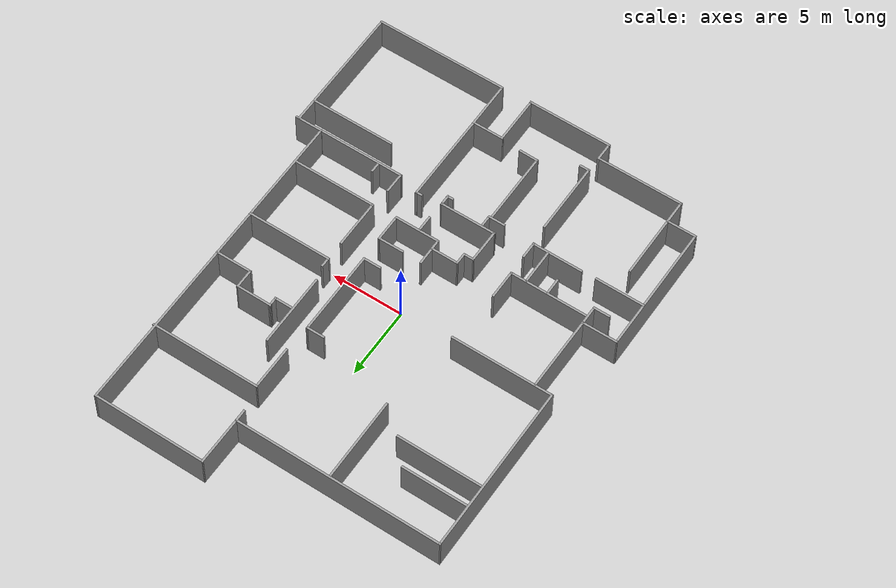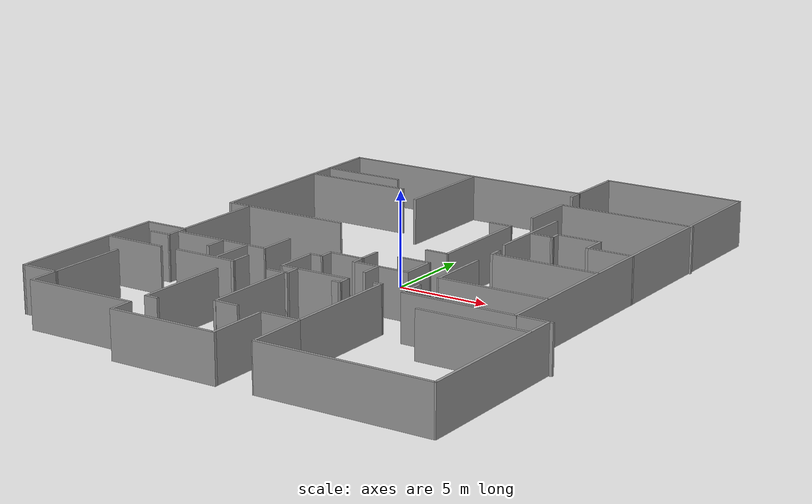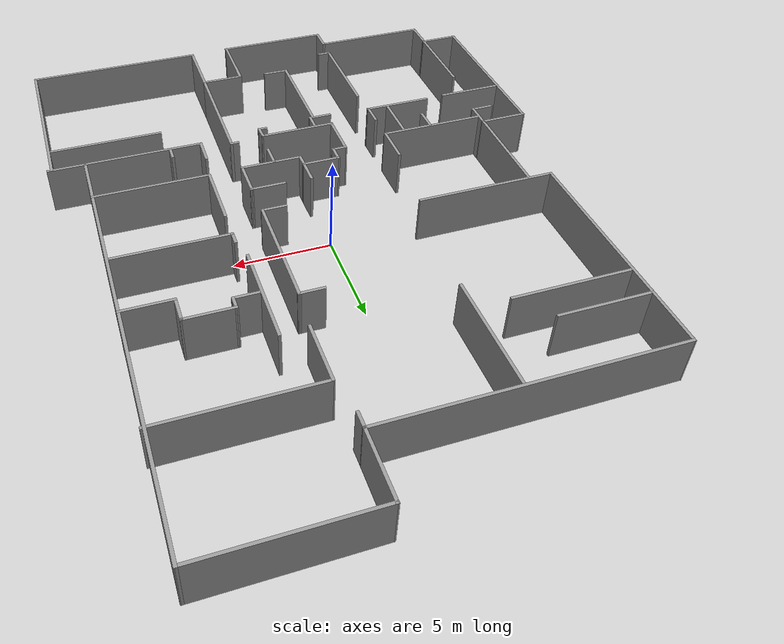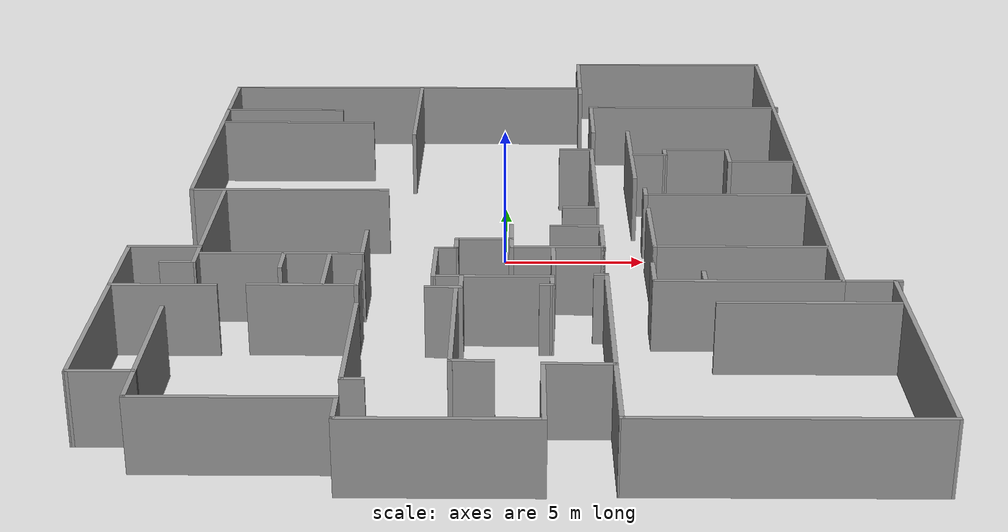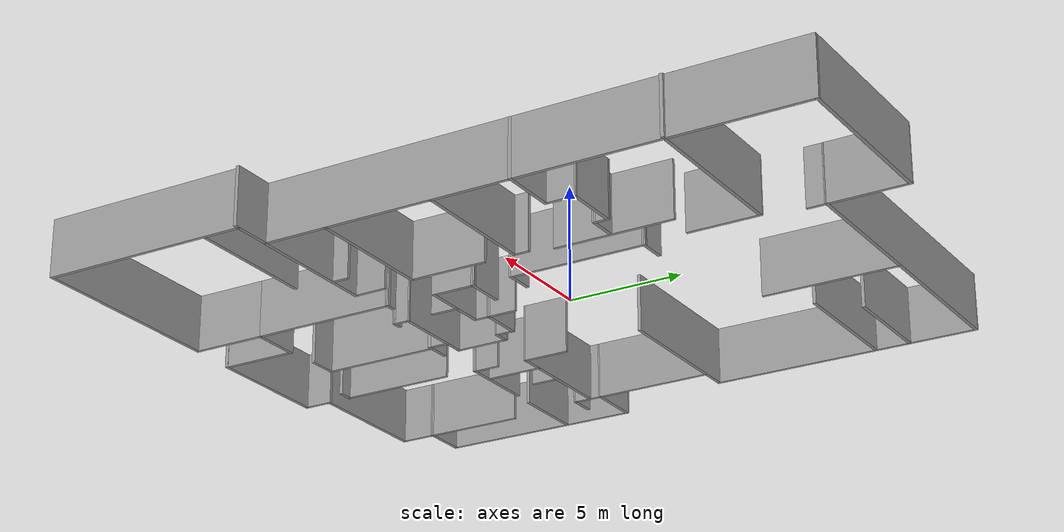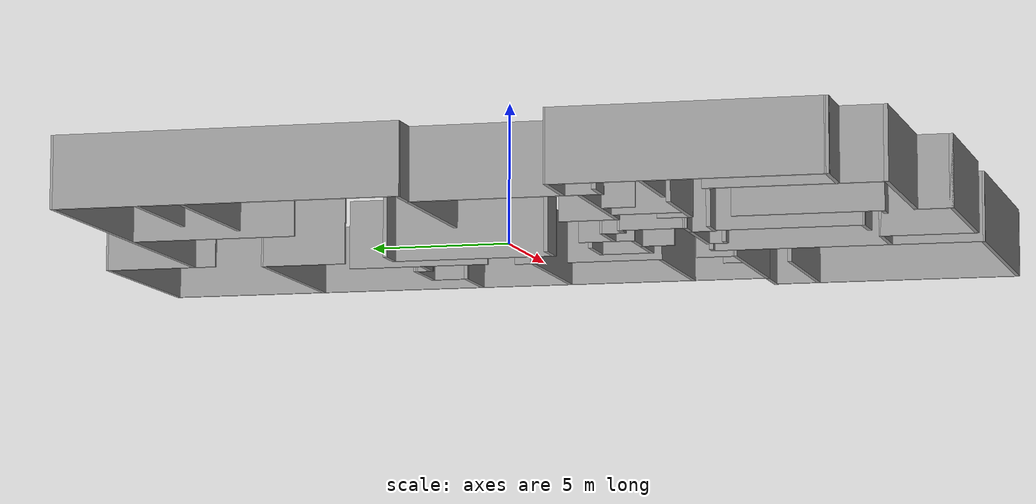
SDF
<?xml version='1.0'?>
<sdf version='1.7'>
  <model name='apartment'>
    <pose>0.0743 -0.139559 0 0 -0 0</pose>
    <link name='Wall_116'>
      <collision name='Wall_116_Collision'>
        <geometry>
          <box>
            <size>23.3088 0.15 2.5</size>
          </box>
        </geometry>
        <pose>0 0 1.25 0 -0 0</pose>
      </collision>
      <visual name='Wall_116_Visual'>
        <pose>0 0 1.25 0 -0 0</pose>
        <geometry>
          <box>
            <size>23.3088 0.15 2.5</size>
          </box>
        </geometry>
        <material>
          <script>
            <uri>file://media/materials/scripts/gazebo.material</uri>
            <name>Gazebo/Grey</name>
          </script>
          <ambient>1 1 1 1</ambient>
        </material>
        <meta>
          <layer>0</layer>
        </meta>
      </visual>
      <pose>10.8315 4.62381 0 0 -0 -1.57136</pose>
    </link>
    <link name='Wall_119'>
      <collision name='Wall_119_Collision'>
        <geometry>
          <box>
            <size>8 0.15 2.5</size>
          </box>
        </geometry>
        <pose>0 0 1.25 0 -0 0</pose>
      </collision>
      <visual name='Wall_119_Visual'>
        <pose>0 0 1.25 0 -0 0</pose>
        <geometry>
          <box>
            <size>8 0.15 2.5</size>
          </box>
        </geometry>
        <material>
          <script>
            <uri>file://media/materials/scripts/gazebo.material</uri>
            <name>Gazebo/Grey</name>
          </script>
          <ambient>1 1 1 1</ambient>
        </material>
        <meta>
          <layer>0</layer>
        </meta>
      </visual>
      <pose>6.91297 16.2032 0 0 -0 3.14159</pose>
    </link>
    <link name='Wall_120'>
      <collision name='Wall_120_Collision'>
        <geometry>
          <box>
            <size>3.48703 0.15 2.5</size>
          </box>
        </geometry>
        <pose>0 0 1.25 0 -0 0</pose>
      </collision>
      <visual name='Wall_120_Visual'>
        <pose>0 0 1.25 0 -0 0</pose>
        <geometry>
          <box>
            <size>3.48703 0.15 2.5</size>
          </box>
        </geometry>
        <material>
          <script>
            <uri>file://media/materials/scripts/gazebo.material</uri>
            <name>Gazebo/Grey</name>
          </script>
          <ambient>1 1 1 1</ambient>
        </material>
        <meta>
          <layer>0</layer>
        </meta>
      </visual>
      <pose>2.975 14.5347 0 0 -0 -1.57857</pose>
    </link>
    <link name='Wall_121'>
      <collision name='Wall_121_Collision'>
        <geometry>
          <box>
            <size>14.5961 0.15 2.5</size>
          </box>
        </geometry>
        <pose>0 0 1.25 0 -0 0</pose>
      </collision>
      <visual name='Wall_121_Visual'>
        <pose>0 0 1.25 0 -0 0</pose>
        <geometry>
          <box>
            <size>14.5961 0.15 2.5</size>
          </box>
        </geometry>
        <material>
          <script>
            <uri>file://media/materials/scripts/gazebo.material</uri>
            <name>Gazebo/Grey</name>
          </script>
          <ambient>1 1 1 1</ambient>
        </material>
        <meta>
          <layer>0</layer>
        </meta>
      </visual>
      <pose>-4.26104 12.8597 0 0 -0 -3.1407</pose>
    </link>
    <link name='Wall_122'>
      <collision name='Wall_122_Collision'>
        <geometry>
          <box>
            <size>12.0512 0.15 2.5</size>
          </box>
        </geometry>
        <pose>0 0 1.25 0 -0 0</pose>
      </collision>
      <visual name='Wall_122_Visual'>
        <pose>0 0 1.25 0 -0 0</pose>
        <geometry>
          <box>
            <size>12.0512 0.15 2.5</size>
          </box>
        </geometry>
        <material>
          <script>
            <uri>file://media/materials/scripts/gazebo.material</uri>
            <name>Gazebo/Grey</name>
          </script>
          <ambient>1 1 1 1</ambient>
        </material>
        <meta>
          <layer>0</layer>
        </meta>
      </visual>
      <pose>-11.4841 6.90265 0 0 -0 -1.5708</pose>
    </link>
    <link name='Wall_124'>
      <collision name='Wall_124_Collision'>
        <geometry>
          <box>
            <size>7.25 0.15 2.5</size>
          </box>
        </geometry>
        <pose>0 0 1.25 0 -0 0</pose>
      </collision>
      <visual name='Wall_124_Visual'>
        <pose>0 0 1.25 0 -0 0</pose>
        <geometry>
          <box>
            <size>7.25 0.15 2.5</size>
          </box>
        </geometry>
        <material>
          <script>
            <uri>file://media/materials/scripts/gazebo.material</uri>
            <name>Gazebo/Grey</name>
          </script>
          <ambient>1 1 1 1</ambient>
        </material>
        <meta>
          <layer>0</layer>
        </meta>
      </visual>
      <pose>-7.93411 0.952068 0 0 -0 0</pose>
    </link>
    <link name='Wall_126'>
      <collision name='Wall_126_Collision'>
        <geometry>
          <box>
            <size>5.33239 0.15 2.5</size>
          </box>
        </geometry>
        <pose>0 0 1.25 0 -0 0</pose>
      </collision>
      <visual name='Wall_126_Visual'>
        <pose>0 0 1.25 0 -0 0</pose>
        <geometry>
          <box>
            <size>5.33239 0.15 2.5</size>
          </box>
        </geometry>
        <material>
          <script>
            <uri>file://media/materials/scripts/gazebo.material</uri>
            <name>Gazebo/Grey</name>
          </script>
          <ambient>1 1 1 1</ambient>
        </material>
        <meta>
          <layer>0</layer>
        </meta>
      </visual>
      <pose>-10.286 -1.7304 0 0 -0 -1.57687</pose>
    </link>
    <link name='Wall_128'>
      <collision name='Wall_128_Collision'>
        <geometry>
          <box>
            <size>2.53582 0.15 2.5</size>
          </box>
        </geometry>
        <pose>0 0 1.25 0 -0 0</pose>
      </collision>
      <visual name='Wall_128_Visual'>
        <pose>0 0 1.25 0 -0 0</pose>
        <geometry>
          <box>
            <size>2.53582 0.15 2.5</size>
          </box>
        </geometry>
        <material>
          <script>
            <uri>file://media/materials/scripts/gazebo.material</uri>
            <name>Gazebo/Grey</name>
          </script>
          <ambient>1 1 1 1</ambient>
        </material>
        <meta>
          <layer>0</layer>
        </meta>
      </visual>
      <pose>-11.4947 -4.32806 0 0 -0 -3.13613</pose>
    </link>
    <link name='Wall_130'>
      <collision name='Wall_130_Collision'>
        <geometry>
          <box>
            <size>9.25 0.15 2.5</size>
          </box>
        </geometry>
        <pose>0 0 1.25 0 -0 0</pose>
      </collision>
      <visual name='Wall_130_Visual'>
        <pose>0 0 1.25 0 -0 0</pose>
        <geometry>
          <box>
            <size>9.25 0.15 2.5</size>
          </box>
        </geometry>
        <material>
          <script>
            <uri>file://media/materials/scripts/gazebo.material</uri>
            <name>Gazebo/Grey</name>
          </script>
          <ambient>1 1 1 1</ambient>
        </material>
        <meta>
          <layer>0</layer>
        </meta>
      </visual>
      <pose>-12.6812 -8.88457 0 0 -0 -1.56938</pose>
    </link>
    <link name='Wall_132'>
      <collision name='Wall_132_Collision'>
        <geometry>
          <box>
            <size>2.12901 0.15 2.5</size>
          </box>
        </geometry>
        <pose>0 0 1.25 0 -0 0</pose>
      </collision>
      <visual name='Wall_132_Visual'>
        <pose>0 0 1.25 0 -0 0</pose>
        <geometry>
          <box>
            <size>2.12901 0.15 2.5</size>
          </box>
        </geometry>
        <material>
          <script>
            <uri>file://media/materials/scripts/gazebo.material</uri>
            <name>Gazebo/Grey</name>
          </script>
          <ambient>1 1 1 1</ambient>
        </material>
        <meta>
          <layer>0</layer>
        </meta>
      </visual>
      <pose>-11.6852 -13.4313 0 0 -0 0.003258</pose>
    </link>
    <link name='Wall_134'>
      <collision name='Wall_134_Collision'>
        <geometry>
          <box>
            <size>1.71777 0.15 2.5</size>
          </box>
        </geometry>
        <pose>0 0 1.25 0 -0 0</pose>
      </collision>
      <visual name='Wall_134_Visual'>
        <pose>0 0 1.25 0 -0 0</pose>
        <geometry>
          <box>
            <size>1.71777 0.15 2.5</size>
          </box>
        </geometry>
        <material>
          <script>
            <uri>file://media/materials/scripts/gazebo.material</uri>
            <name>Gazebo/Grey</name>
          </script>
          <ambient>1 1 1 1</ambient>
        </material>
        <meta>
          <layer>0</layer>
        </meta>
      </visual>
      <pose>-10.6957 -14.212 0 0 -0 -1.5708</pose>
    </link>
    <link name='Wall_136'>
      <collision name='Wall_136_Collision'>
        <geometry>
          <box>
            <size>6.15328 0.15 2.5</size>
          </box>
        </geometry>
        <pose>0 0 1.25 0 -0 0</pose>
      </collision>
      <visual name='Wall_136_Visual'>
        <pose>0 0 1.25 0 -0 0</pose>
        <geometry>
          <box>
            <size>6.15328 0.15 2.5</size>
          </box>
        </geometry>
        <material>
          <script>
            <uri>file://media/materials/scripts/gazebo.material</uri>
            <name>Gazebo/Grey</name>
          </script>
          <ambient>1 1 1 1</ambient>
        </material>
        <meta>
          <layer>0</layer>
        </meta>
      </visual>
      <pose>-7.6941 -14.9959 0 0 -0 0</pose>
    </link>
    <link name='Wall_138'>
      <collision name='Wall_138_Collision'>
        <geometry>
          <box>
            <size>1.35788 0.15 2.5</size>
          </box>
        </geometry>
        <pose>0 0 1.25 0 -0 0</pose>
      </collision>
      <visual name='Wall_138_Visual'>
        <pose>0 0 1.25 0 -0 0</pose>
        <geometry>
          <box>
            <size>1.35788 0.15 2.5</size>
          </box>
        </geometry>
        <material>
          <script>
            <uri>file://media/materials/scripts/gazebo.material</uri>
            <name>Gazebo/Grey</name>
          </script>
          <ambient>1 1 1 1</ambient>
        </material>
        <meta>
          <layer>0</layer>
        </meta>
      </visual>
      <pose>-4.69246 -15.5998 0 0 -0 -1.5708</pose>
    </link>
    <link name='Wall_140'>
      <collision name='Wall_140_Collision'>
        <geometry>
          <box>
            <size>5.98039 0.15 2.5</size>
          </box>
        </geometry>
        <pose>0 0 1.25 0 -0 0</pose>
      </collision>
      <visual name='Wall_140_Visual'>
        <pose>0 0 1.25 0 -0 0</pose>
        <geometry>
          <box>
            <size>5.98039 0.15 2.5</size>
          </box>
        </geometry>
        <material>
          <script>
            <uri>file://media/materials/scripts/gazebo.material</uri>
            <name>Gazebo/Grey</name>
          </script>
          <ambient>1 1 1 1</ambient>
        </material>
        <meta>
          <layer>0</layer>
        </meta>
      </visual>
      <pose>-1.77727 -16.2038 0 0 -0 0</pose>
    </link>
    <link name='Wall_141'>
      <collision name='Wall_141_Collision'>
        <geometry>
          <box>
            <size>3.48538 0.15 2.5</size>
          </box>
        </geometry>
        <pose>0 0 1.25 0 -0 0</pose>
      </collision>
      <visual name='Wall_141_Visual'>
        <pose>0 0 1.25 0 -0 0</pose>
        <geometry>
          <box>
            <size>3.48538 0.15 2.5</size>
          </box>
        </geometry>
        <material>
          <script>
            <uri>file://media/materials/scripts/gazebo.material</uri>
            <name>Gazebo/Grey</name>
          </script>
          <ambient>1 1 1 1</ambient>
        </material>
        <meta>
          <layer>0</layer>
        </meta>
      </visual>
      <pose>1.12812 -14.5361 0 0 -0 1.5708</pose>
    </link>
    <link name='Wall_142'>
      <collision name='Wall_142_Collision'>
        <geometry>
          <box>
            <size>2.26961 0.15 2.5</size>
          </box>
        </geometry>
        <pose>0 0 1.25 0 -0 0</pose>
      </collision>
      <visual name='Wall_142_Visual'>
        <pose>0 0 1.25 0 -0 0</pose>
        <geometry>
          <box>
            <size>2.26961 0.15 2.5</size>
          </box>
        </geometry>
        <material>
          <script>
            <uri>file://media/materials/scripts/gazebo.material</uri>
            <name>Gazebo/Grey</name>
          </script>
          <ambient>1 1 1 1</ambient>
        </material>
        <meta>
          <layer>0</layer>
        </meta>
      </visual>
      <pose>2.18792 -12.8684 0 0 -0 0</pose>
    </link>
    <link name='Wall_143'>
      <collision name='Wall_143_Collision'>
        <geometry>
          <box>
            <size>3.40693 0.15 2.5</size>
          </box>
        </geometry>
        <pose>0 0 1.25 0 -0 0</pose>
      </collision>
      <visual name='Wall_143_Visual'>
        <pose>0 0 1.25 0 -0 0</pose>
        <geometry>
          <box>
            <size>3.40693 0.15 2.5</size>
          </box>
        </geometry>
        <material>
          <script>
            <uri>file://media/materials/scripts/gazebo.material</uri>
            <name>Gazebo/Grey</name>
          </script>
          <ambient>1 1 1 1</ambient>
        </material>
        <meta>
          <layer>0</layer>
        </meta>
      </visual>
      <pose>3.25264 -14.4968 0 0 -0 -1.56778</pose>
    </link>
    <link name='Wall_144'>
      <collision name='Wall_144_Collision'>
        <geometry>
          <box>
            <size>9.39711 0.15 2.5</size>
          </box>
        </geometry>
        <pose>0 0 1.25 0 -0 0</pose>
      </collision>
      <visual name='Wall_144_Visual'>
        <pose>0 0 1.25 0 -0 0</pose>
        <geometry>
          <box>
            <size>9.39711 0.15 2.5</size>
          </box>
        </geometry>
        <material>
          <script>
            <uri>file://media/materials/scripts/gazebo.material</uri>
            <name>Gazebo/Grey</name>
          </script>
          <ambient>1 1 1 1</ambient>
        </material>
        <meta>
          <layer>0</layer>
        </meta>
      </visual>
      <pose>7.88109 -16.1204 0 0 -0 0.001061</pose>
    </link>
    <link name='Wall_145'>
      <collision name='Wall_145_Collision'>
        <geometry>
          <box>
            <size>9.27942 0.15 2.5</size>
          </box>
        </geometry>
        <pose>0 0 1.25 0 -0 0</pose>
      </collision>
      <visual name='Wall_145_Visual'>
        <pose>0 0 1.25 0 -0 0</pose>
        <geometry>
          <box>
            <size>9.27942 0.15 2.5</size>
          </box>
        </geometry>
        <material>
          <script>
            <uri>file://media/materials/scripts/gazebo.material</uri>
            <name>Gazebo/Grey</name>
          </script>
          <ambient>1 1 1 1</ambient>
        </material>
        <meta>
          <layer>0</layer>
        </meta>
      </visual>
      <pose>12.5145 -11.5508 0 0 -0 1.5708</pose>
    </link>
    <link name='Wall_147'>
      <collision name='Wall_147_Collision'>
        <geometry>
          <box>
            <size>2.01302 0.15 2.5</size>
          </box>
        </geometry>
        <pose>0 0 1.25 0 -0 0</pose>
      </collision>
      <visual name='Wall_147_Visual'>
        <pose>0 0 1.25 0 -0 0</pose>
        <geometry>
          <box>
            <size>2.01302 0.15 2.5</size>
          </box>
        </geometry>
        <material>
          <script>
            <uri>file://media/materials/scripts/gazebo.material</uri>
            <name>Gazebo/Grey</name>
          </script>
          <ambient>1 1 1 1</ambient>
        </material>
        <meta>
          <layer>0</layer>
        </meta>
      </visual>
      <pose>11.7565 -6.95561 0 0 -0 0</pose>
    </link>
    <link name='Wall_149'>
      <collision name='Wall_149_Collision'>
        <geometry>
          <box>
            <size>4.75 0.15 2.5</size>
          </box>
        </geometry>
        <pose>0 0 1.25 0 -0 0</pose>
      </collision>
      <visual name='Wall_149_Visual'>
        <pose>0 0 1.25 0 -0 0</pose>
        <geometry>
          <box>
            <size>4.75 0.15 2.5</size>
          </box>
        </geometry>
        <material>
          <script>
            <uri>file://media/materials/scripts/gazebo.material</uri>
            <name>Gazebo/Grey</name>
          </script>
          <ambient>1 1 1 1</ambient>
        </material>
        <meta>
          <layer>0</layer>
        </meta>
      </visual>
      <pose>-9.17595 9.91314 0 0 -0 3.14159</pose>
    </link>
    <link name='Wall_151'>
      <collision name='Wall_151_Collision'>
        <geometry>
          <box>
            <size>6 0.15 2.5</size>
          </box>
        </geometry>
        <pose>0 0 1.25 0 -0 0</pose>
      </collision>
      <visual name='Wall_151_Visual'>
        <pose>0 0 1.25 0 -0 0</pose>
        <geometry>
          <box>
            <size>6 0.15 2.5</size>
          </box>
        </geometry>
        <material>
          <script>
            <uri>file://media/materials/scripts/gazebo.material</uri>
            <name>Gazebo/Grey</name>
          </script>
          <ambient>1 1 1 1</ambient>
        </material>
        <meta>
          <layer>0</layer>
        </meta>
      </visual>
      <pose>-8.42502 8.37932 0 0 -0 3.14159</pose>
    </link>
    <link name='Wall_153'>
      <collision name='Wall_153_Collision'>
        <geometry>
          <box>
            <size>6 0.15 2.5</size>
          </box>
        </geometry>
        <pose>0 0 1.25 0 -0 0</pose>
      </collision>
      <visual name='Wall_153_Visual'>
        <pose>0 0 1.25 0 -0 0</pose>
        <geometry>
          <box>
            <size>6 0.15 2.5</size>
          </box>
        </geometry>
        <material>
          <script>
            <uri>file://media/materials/scripts/gazebo.material</uri>
            <name>Gazebo/Grey</name>
          </script>
          <ambient>1 1 1 1</ambient>
        </material>
        <meta>
          <layer>0</layer>
        </meta>
      </visual>
      <pose>-3.72775 9.90026 0 0 -0 1.5708</pose>
    </link>
    <link name='Wall_157'>
      <collision name='Wall_157_Collision'>
        <geometry>
          <box>
            <size>0.9 0.15 2.5</size>
          </box>
        </geometry>
        <pose>0 0 1.25 0 -0 0</pose>
      </collision>
      <visual name='Wall_157_Visual'>
        <pose>0 0 1.25 0 -0 0</pose>
        <geometry>
          <box>
            <size>0.9 0.15 2.5</size>
          </box>
        </geometry>
        <material>
          <script>
            <uri>file://media/materials/scripts/gazebo.material</uri>
            <name>Gazebo/Grey</name>
          </script>
          <ambient>1 1 1 1</ambient>
        </material>
        <meta>
          <layer>0</layer>
        </meta>
      </visual>
      <pose>2.96203 12.4912 0 0 -0 -1.5708</pose>
    </link>
    <link name='Wall_159'>
      <collision name='Wall_159_Collision'>
        <geometry>
          <box>
            <size>3.19032 0.15 2.5</size>
          </box>
        </geometry>
        <pose>0 0 1.25 0 -0 0</pose>
      </collision>
      <visual name='Wall_159_Visual'>
        <pose>0 0 1.25 0 -0 0</pose>
        <geometry>
          <box>
            <size>3.19032 0.15 2.5</size>
          </box>
        </geometry>
        <material>
          <script>
            <uri>file://media/materials/scripts/gazebo.material</uri>
            <name>Gazebo/Grey</name>
          </script>
          <ambient>1 1 1 1</ambient>
        </material>
        <meta>
          <layer>0</layer>
        </meta>
      </visual>
      <pose>3.33799 8.80733 0 0 -0 1.56799</pose>
    </link>
    <link name='Wall_160'>
      <collision name='Wall_160_Collision'>
        <geometry>
          <box>
            <size>7.75 0.15 2.5</size>
          </box>
        </geometry>
        <pose>0 0 1.25 0 -0 0</pose>
      </collision>
      <visual name='Wall_160_Visual'>
        <pose>0 0 1.25 0 -0 0</pose>
        <geometry>
          <box>
            <size>7.75 0.15 2.5</size>
          </box>
        </geometry>
        <material>
          <script>
            <uri>file://media/materials/scripts/gazebo.material</uri>
            <name>Gazebo/Grey</name>
          </script>
          <ambient>1 1 1 1</ambient>
        </material>
        <meta>
          <layer>0</layer>
        </meta>
      </visual>
      <pose>7.14226 10.3275 0 0 -0 0</pose>
    </link>
    <link name='Wall_162'>
      <collision name='Wall_162_Collision'>
        <geometry>
          <box>
            <size>1.30932 0.15 2.5</size>
          </box>
        </geometry>
        <pose>0 0 1.25 0 -0 0</pose>
      </collision>
      <visual name='Wall_162_Visual'>
        <pose>0 0 1.25 0 -0 0</pose>
        <geometry>
          <box>
            <size>1.30932 0.15 2.5</size>
          </box>
        </geometry>
        <material>
          <script>
            <uri>file://media/materials/scripts/gazebo.material</uri>
            <name>Gazebo/Grey</name>
          </script>
          <ambient>1 1 1 1</ambient>
        </material>
        <meta>
          <layer>0</layer>
        </meta>
      </visual>
      <pose>2.60408 5.30932 0 0 -0 0</pose>
    </link>
    <link name='Wall_163'>
      <collision name='Wall_163_Collision'>
        <geometry>
          <box>
            <size>6.11124 0.15 2.5</size>
          </box>
        </geometry>
        <pose>0 0 1.25 0 -0 0</pose>
      </collision>
      <visual name='Wall_163_Visual'>
        <pose>0 0 1.25 0 -0 0</pose>
        <geometry>
          <box>
            <size>6.11124 0.15 2.5</size>
          </box>
        </geometry>
        <material>
          <script>
            <uri>file://media/materials/scripts/gazebo.material</uri>
            <name>Gazebo/Grey</name>
          </script>
          <ambient>1 1 1 1</ambient>
        </material>
        <meta>
          <layer>0</layer>
        </meta>
      </visual>
      <pose>3.18003 2.3287 0 0 -0 -1.57204</pose>
    </link>
    <link name='Wall_164'>
      <collision name='Wall_164_Collision'>
        <geometry>
          <box>
            <size>1.30932 0.15 2.5</size>
          </box>
        </geometry>
        <pose>0 0 1.25 0 -0 0</pose>
      </collision>
      <visual name='Wall_164_Visual'>
        <pose>0 0 1.25 0 -0 0</pose>
        <geometry>
          <box>
            <size>1.30932 0.15 2.5</size>
          </box>
        </geometry>
        <material>
          <script>
            <uri>file://media/materials/scripts/gazebo.material</uri>
            <name>Gazebo/Grey</name>
          </script>
          <ambient>1 1 1 1</ambient>
        </material>
        <meta>
          <layer>0</layer>
        </meta>
      </visual>
      <pose>2.59666 -0.651912 0 0 -0 3.14159</pose>
    </link>
    <link name='Wall_166'>
      <collision name='Wall_166_Collision'>
        <geometry>
          <box>
            <size>5.25 0.15 2.5</size>
          </box>
        </geometry>
        <pose>0 0 1.25 0 -0 0</pose>
      </collision>
      <visual name='Wall_166_Visual'>
        <pose>0 0 1.25 0 -0 0</pose>
        <geometry>
          <box>
            <size>5.25 0.15 2.5</size>
          </box>
        </geometry>
        <material>
          <script>
            <uri>file://media/materials/scripts/gazebo.material</uri>
            <name>Gazebo/Grey</name>
          </script>
          <ambient>1 1 1 1</ambient>
        </material>
        <meta>
          <layer>0</layer>
        </meta>
      </visual>
      <pose>4.68352 4.81413 0 0 -0 -1.5708</pose>
    </link>
    <link name='Wall_168'>
      <collision name='Wall_168_Collision'>
        <geometry>
          <box>
            <size>2.62007 0.15 2.5</size>
          </box>
        </geometry>
        <pose>0 0 1.25 0 -0 0</pose>
      </collision>
      <visual name='Wall_168_Visual'>
        <pose>0 0 1.25 0 -0 0</pose>
        <geometry>
          <box>
            <size>2.62007 0.15 2.5</size>
          </box>
        </geometry>
        <material>
          <script>
            <uri>file://media/materials/scripts/gazebo.material</uri>
            <name>Gazebo/Grey</name>
          </script>
          <ambient>1 1 1 1</ambient>
        </material>
        <meta>
          <layer>0</layer>
        </meta>
      </visual>
      <pose>9.60627 4.01938 0 0 -0 3.14159</pose>
    </link>
    <link name='Wall_169'>
      <collision name='Wall_169_Collision'>
        <geometry>
          <box>
            <size>1.41424 0.15 2.5</size>
          </box>
        </geometry>
        <pose>0 0 1.25 0 -0 0</pose>
      </collision>
      <visual name='Wall_169_Visual'>
        <pose>0 0 1.25 0 -0 0</pose>
        <geometry>
          <box>
            <size>1.41424 0.15 2.5</size>
          </box>
        </geometry>
        <material>
          <script>
            <uri>file://media/materials/scripts/gazebo.material</uri>
            <name>Gazebo/Grey</name>
          </script>
          <ambient>1 1 1 1</ambient>
        </material>
        <meta>
          <layer>0</layer>
        </meta>
      </visual>
      <pose>8.37124 4.65149 0 0 -0 1.5708</pose>
    </link>
    <link name='Wall_170'>
      <collision name='Wall_170_Collision'>
        <geometry>
          <box>
            <size>2.54017 0.15 2.5</size>
          </box>
        </geometry>
        <pose>0 0 1.25 0 -0 0</pose>
      </collision>
      <visual name='Wall_170_Visual'>
        <pose>0 0 1.25 0 -0 0</pose>
        <geometry>
          <box>
            <size>2.54017 0.15 2.5</size>
          </box>
        </geometry>
        <material>
          <script>
            <uri>file://media/materials/scripts/gazebo.material</uri>
            <name>Gazebo/Grey</name>
          </script>
          <ambient>1 1 1 1</ambient>
        </material>
        <meta>
          <layer>0</layer>
        </meta>
      </visual>
      <pose>7.17615 5.28521 0 0 -0 3.14025</pose>
    </link>
    <link name='Wall_171'>
      <collision name='Wall_171_Collision'>
        <geometry>
          <box>
            <size>0.725159 0.15 2.5</size>
          </box>
        </geometry>
        <pose>0 0 1.25 0 -0 0</pose>
      </collision>
      <visual name='Wall_171_Visual'>
        <pose>0 0 1.25 0 -0 0</pose>
        <geometry>
          <box>
            <size>0.725159 0.15 2.5</size>
          </box>
        </geometry>
        <material>
          <script>
            <uri>file://media/materials/scripts/gazebo.material</uri>
            <name>Gazebo/Grey</name>
          </script>
          <ambient>1 1 1 1</ambient>
        </material>
        <meta>
          <layer>0</layer>
        </meta>
      </visual>
      <pose>5.98268 4.99924 0 0 -0 -1.56522</pose>
    </link>
    <link name='Wall_172'>
      <collision name='Wall_172_Collision'>
        <geometry>
          <box>
            <size>1.33977 0.15 2.5</size>
          </box>
        </geometry>
        <pose>0 0 1.25 0 -0 0</pose>
      </collision>
      <visual name='Wall_172_Visual'>
        <pose>0 0 1.25 0 -0 0</pose>
        <geometry>
          <box>
            <size>1.33977 0.15 2.5</size>
          </box>
        </geometry>
        <material>
          <script>
            <uri>file://media/materials/scripts/gazebo.material</uri>
            <name>Gazebo/Grey</name>
          </script>
          <ambient>1 1 1 1</ambient>
        </material>
        <meta>
          <layer>0</layer>
        </meta>
      </visual>
      <pose>5.3894 4.71007 0 0 -0 -3.1389</pose>
    </link>
    <link name='Wall_174'>
      <collision name='Wall_174_Collision'>
        <geometry>
          <box>
            <size>6 0.15 2.5</size>
          </box>
        </geometry>
        <pose>0 0 1.25 0 -0 0</pose>
      </collision>
      <visual name='Wall_174_Visual'>
        <pose>0 0 1.25 0 -0 0</pose>
        <geometry>
          <box>
            <size>6 0.15 2.5</size>
          </box>
        </geometry>
        <material>
          <script>
            <uri>file://media/materials/scripts/gazebo.material</uri>
            <name>Gazebo/Grey</name>
          </script>
          <ambient>1 1 1 1</ambient>
        </material>
        <meta>
          <layer>0</layer>
        </meta>
      </visual>
      <pose>7.90256 0.585894 0 0 -0 3.14159</pose>
    </link>
    <link name='Wall_175'>
      <collision name='Wall_175_Collision'>
        <geometry>
          <box>
            <size>0.75 0.15 2.5</size>
          </box>
        </geometry>
        <pose>0 0 1.25 0 -0 0</pose>
      </collision>
      <visual name='Wall_175_Visual'>
        <pose>0 0 1.25 0 -0 0</pose>
        <geometry>
          <box>
            <size>0.75 0.15 2.5</size>
          </box>
        </geometry>
        <material>
          <script>
            <uri>file://media/materials/scripts/gazebo.material</uri>
            <name>Gazebo/Grey</name>
          </script>
          <ambient>1 1 1 1</ambient>
        </material>
        <meta>
          <layer>0</layer>
        </meta>
      </visual>
      <pose>4.97756 0.885894 0 0 -0 1.5708</pose>
    </link>
    <link name='Wall_177'>
      <collision name='Wall_177_Collision'>
        <geometry>
          <box>
            <size>3.5 0.15 2.5</size>
          </box>
        </geometry>
        <pose>0 0 1.25 0 -0 0</pose>
      </collision>
      <visual name='Wall_177_Visual'>
        <pose>0 0 1.25 0 -0 0</pose>
        <geometry>
          <box>
            <size>3.5 0.15 2.5</size>
          </box>
        </geometry>
        <material>
          <script>
            <uri>file://media/materials/scripts/gazebo.material</uri>
            <name>Gazebo/Grey</name>
          </script>
          <ambient>1 1 1 1</ambient>
        </material>
        <meta>
          <layer>0</layer>
        </meta>
      </visual>
      <pose>4.97541 -2.48734 0 0 -0 -1.5708</pose>
    </link>
    <link name='Wall_178'>
      <collision name='Wall_178_Collision'>
        <geometry>
          <box>
            <size>6 0.15 2.5</size>
          </box>
        </geometry>
        <pose>0 0 1.25 0 -0 0</pose>
      </collision>
      <visual name='Wall_178_Visual'>
        <pose>0 0 1.25 0 -0 0</pose>
        <geometry>
          <box>
            <size>6 0.15 2.5</size>
          </box>
        </geometry>
        <material>
          <script>
            <uri>file://media/materials/scripts/gazebo.material</uri>
            <name>Gazebo/Grey</name>
          </script>
          <ambient>1 1 1 1</ambient>
        </material>
        <meta>
          <layer>0</layer>
        </meta>
      </visual>
      <pose>7.90041 -4.16234 0 0 -0 0</pose>
    </link>
    <link name='Wall_180'>
      <collision name='Wall_180_Collision'>
        <geometry>
          <box>
            <size>6.18515 0.15 2.5</size>
          </box>
        </geometry>
        <pose>0 0 1.25 0 -0 0</pose>
      </collision>
      <visual name='Wall_180_Visual'>
        <pose>0 0 1.25 0 -0 0</pose>
        <geometry>
          <box>
            <size>6.18515 0.15 2.5</size>
          </box>
        </geometry>
        <material>
          <script>
            <uri>file://media/materials/scripts/gazebo.material</uri>
            <name>Gazebo/Grey</name>
          </script>
          <ambient>1 1 1 1</ambient>
        </material>
        <meta>
          <layer>0</layer>
        </meta>
      </visual>
      <pose>7.80742 -6.96858 0 0 -0 3.14159</pose>
    </link>
    <link name='Wall_181'>
      <collision name='Wall_181_Collision'>
        <geometry>
          <box>
            <size>1.50006 0.15 2.5</size>
          </box>
        </geometry>
        <pose>0 0 1.25 0 -0 0</pose>
      </collision>
      <visual name='Wall_181_Visual'>
        <pose>0 0 1.25 0 -0 0</pose>
        <geometry>
          <box>
            <size>1.50006 0.15 2.5</size>
          </box>
        </geometry>
        <material>
          <script>
            <uri>file://media/materials/scripts/gazebo.material</uri>
            <name>Gazebo/Grey</name>
          </script>
          <ambient>1 1 1 1</ambient>
        </material>
        <meta>
          <layer>0</layer>
        </meta>
      </visual>
      <pose>4.79633 -6.28061 0 0 -0 1.56119</pose>
    </link>
    <link name='Wall_183'>
      <collision name='Wall_183_Collision'>
        <geometry>
          <box>
            <size>0.75 0.15 2.5</size>
          </box>
        </geometry>
        <pose>0 0 1.25 0 -0 0</pose>
      </collision>
      <visual name='Wall_183_Visual'>
        <pose>0 0 1.25 0 -0 0</pose>
        <geometry>
          <box>
            <size>0.75 0.15 2.5</size>
          </box>
        </geometry>
        <material>
          <script>
            <uri>file://media/materials/scripts/gazebo.material</uri>
            <name>Gazebo/Grey</name>
          </script>
          <ambient>1 1 1 1</ambient>
        </material>
        <meta>
          <layer>0</layer>
        </meta>
      </visual>
      <pose>6.42803 -6.55967 0 0 -0 -1.5708</pose>
    </link>
    <link name='Wall_185'>
      <collision name='Wall_185_Collision'>
        <geometry>
          <box>
            <size>6 0.15 2.5</size>
          </box>
        </geometry>
        <pose>0 0 1.25 0 -0 0</pose>
      </collision>
      <visual name='Wall_185_Visual'>
        <pose>0 0 1.25 0 -0 0</pose>
        <geometry>
          <box>
            <size>6 0.15 2.5</size>
          </box>
        </geometry>
        <material>
          <script>
            <uri>file://media/materials/scripts/gazebo.material</uri>
            <name>Gazebo/Grey</name>
          </script>
          <ambient>1 1 1 1</ambient>
        </material>
        <meta>
          <layer>0</layer>
        </meta>
      </visual>
      <pose>9.58588 -8.60721 0 0 -0 3.14159</pose>
    </link>
    <link name='Wall_187'>
      <collision name='Wall_187_Collision'>
        <geometry>
          <box>
            <size>6.54487 0.15 2.5</size>
          </box>
        </geometry>
        <pose>0 0 1.25 0 -0 0</pose>
      </collision>
      <visual name='Wall_187_Visual'>
        <pose>0 0 1.25 0 -0 0</pose>
        <geometry>
          <box>
            <size>6.54487 0.15 2.5</size>
          </box>
        </geometry>
        <material>
          <script>
            <uri>file://media/materials/scripts/gazebo.material</uri>
            <name>Gazebo/Grey</name>
          </script>
          <ambient>1 1 1 1</ambient>
        </material>
        <meta>
          <layer>0</layer>
        </meta>
      </visual>
      <pose>3.25334 -9.67096 0 0 -0 1.56904</pose>
    </link>
    <link name='Wall_188'>
      <collision name='Wall_188_Collision'>
        <geometry>
          <box>
            <size>0.5 0.15 2.5</size>
          </box>
        </geometry>
        <pose>0 0 1.25 0 -0 0</pose>
      </collision>
      <visual name='Wall_188_Visual'>
        <pose>0 0 1.25 0 -0 0</pose>
        <geometry>
          <box>
            <size>0.5 0.15 2.5</size>
          </box>
        </geometry>
        <material>
          <script>
            <uri>file://media/materials/scripts/gazebo.material</uri>
            <name>Gazebo/Grey</name>
          </script>
          <ambient>1 1 1 1</ambient>
        </material>
        <meta>
          <layer>0</layer>
        </meta>
      </visual>
      <pose>3.08395 -6.47914 0 0 -0 3.14159</pose>
    </link>
    <link name='Wall_190'>
      <collision name='Wall_190_Collision'>
        <geometry>
          <box>
            <size>4.5 0.15 2.5</size>
          </box>
        </geometry>
        <pose>0 0 1.25 0 -0 0</pose>
      </collision>
      <visual name='Wall_190_Visual'>
        <pose>0 0 1.25 0 -0 0</pose>
        <geometry>
          <box>
            <size>4.5 0.15 2.5</size>
          </box>
        </geometry>
        <material>
          <script>
            <uri>file://media/materials/scripts/gazebo.material</uri>
            <name>Gazebo/Grey</name>
          </script>
          <ambient>1 1 1 1</ambient>
        </material>
        <meta>
          <layer>0</layer>
        </meta>
      </visual>
      <pose>-10.6957 -11.2531 0 0 -0 -1.5708</pose>
    </link>
    <link name='Wall_192'>
      <collision name='Wall_192_Collision'>
        <geometry>
          <box>
            <size>5.21077 0.15 2.5</size>
          </box>
        </geometry>
        <pose>0 0 1.25 0 -0 0</pose>
      </collision>
      <visual name='Wall_192_Visual'>
        <pose>0 0 1.25 0 -0 0</pose>
        <geometry>
          <box>
            <size>5.21077 0.15 2.5</size>
          </box>
        </geometry>
        <material>
          <script>
            <uri>file://media/materials/scripts/gazebo.material</uri>
            <name>Gazebo/Grey</name>
          </script>
          <ambient>1 1 1 1</ambient>
        </material>
        <meta>
          <layer>0</layer>
        </meta>
      </visual>
      <pose>-4.66322 -11.3521 0 0 -0 -1.5708</pose>
    </link>
    <link name='Wall_193'>
      <collision name='Wall_193_Collision'>
        <geometry>
          <box>
            <size>0.75 0.15 2.5</size>
          </box>
        </geometry>
        <pose>0 0 1.25 0 -0 0</pose>
      </collision>
      <visual name='Wall_193_Visual'>
        <pose>0 0 1.25 0 -0 0</pose>
        <geometry>
          <box>
            <size>0.75 0.15 2.5</size>
          </box>
        </geometry>
        <material>
          <script>
            <uri>file://media/materials/scripts/gazebo.material</uri>
            <name>Gazebo/Grey</name>
          </script>
          <ambient>1 1 1 1</ambient>
        </material>
        <meta>
          <layer>0</layer>
        </meta>
      </visual>
      <pose>-4.36322 -13.8825 0 0 -0 0</pose>
    </link>
    <link name='Wall_195'>
      <collision name='Wall_195_Collision'>
        <geometry>
          <box>
            <size>3.5 0.15 2.5</size>
          </box>
        </geometry>
        <pose>0 0 1.25 0 -0 0</pose>
      </collision>
      <visual name='Wall_195_Visual'>
        <pose>0 0 1.25 0 -0 0</pose>
        <geometry>
          <box>
            <size>3.5 0.15 2.5</size>
          </box>
        </geometry>
        <material>
          <script>
            <uri>file://media/materials/scripts/gazebo.material</uri>
            <name>Gazebo/Grey</name>
          </script>
          <ambient>1 1 1 1</ambient>
        </material>
        <meta>
          <layer>0</layer>
        </meta>
      </visual>
      <pose>-10.9848 -7.42192 0 0 -0 0</pose>
    </link>
    <link name='Wall_197'>
      <collision name='Wall_197_Collision'>
        <geometry>
          <box>
            <size>1.41845 0.15 2.5</size>
          </box>
        </geometry>
        <pose>0 0 1.25 0 -0 0</pose>
      </collision>
      <visual name='Wall_197_Visual'>
        <pose>0 0 1.25 0 -0 0</pose>
        <geometry>
          <box>
            <size>1.41845 0.15 2.5</size>
          </box>
        </geometry>
        <material>
          <script>
            <uri>file://media/materials/scripts/gazebo.material</uri>
            <name>Gazebo/Grey</name>
          </script>
          <ambient>1 1 1 1</ambient>
        </material>
        <meta>
          <layer>0</layer>
        </meta>
      </visual>
      <pose>-10.3018 -4.95576 0 0 -0 -1.5708</pose>
    </link>
    <link name='Wall_198'>
      <collision name='Wall_198_Collision'>
        <geometry>
          <box>
            <size>1.21295 0.15 2.5</size>
          </box>
        </geometry>
        <pose>0 0 1.25 0 -0 0</pose>
      </collision>
      <visual name='Wall_198_Visual'>
        <pose>0 0 1.25 0 -0 0</pose>
        <geometry>
          <box>
            <size>1.21295 0.15 2.5</size>
          </box>
        </geometry>
        <material>
          <script>
            <uri>file://media/materials/scripts/gazebo.material</uri>
            <name>Gazebo/Grey</name>
          </script>
          <ambient>1 1 1 1</ambient>
        </material>
        <meta>
          <layer>0</layer>
        </meta>
      </visual>
      <pose>-10.8332 -5.59368 0 0 -0 -3.13462</pose>
    </link>
    <link name='Wall_200'>
      <collision name='Wall_200_Collision'>
        <geometry>
          <box>
            <size>5.5 0.15 2.5</size>
          </box>
        </geometry>
        <pose>0 0 1.25 0 -0 0</pose>
      </collision>
      <visual name='Wall_200_Visual'>
        <pose>0 0 1.25 0 -0 0</pose>
        <geometry>
          <box>
            <size>5.5 0.15 2.5</size>
          </box>
        </geometry>
        <material>
          <script>
            <uri>file://media/materials/scripts/gazebo.material</uri>
            <name>Gazebo/Grey</name>
          </script>
          <ambient>1 1 1 1</ambient>
        </material>
        <meta>
          <layer>0</layer>
        </meta>
      </visual>
      <pose>-7.48339 -4.84969 0 0 -0 0</pose>
    </link>
    <link name='Wall_202'>
      <collision name='Wall_202_Collision'>
        <geometry>
          <box>
            <size>1.25 0.15 2.5</size>
          </box>
        </geometry>
        <pose>0 0 1.25 0 -0 0</pose>
      </collision>
      <visual name='Wall_202_Visual'>
        <pose>0 0 1.25 0 -0 0</pose>
        <geometry>
          <box>
            <size>1.25 0.15 2.5</size>
          </box>
        </geometry>
        <material>
          <script>
            <uri>file://media/materials/scripts/gazebo.material</uri>
            <name>Gazebo/Grey</name>
          </script>
          <ambient>1 1 1 1</ambient>
        </material>
        <meta>
          <layer>0</layer>
        </meta>
      </visual>
      <pose>-7.40723 -5.43676 0 0 -0 -1.5708</pose>
    </link>
    <link name='Wall_204'>
      <collision name='Wall_204_Collision'>
        <geometry>
          <box>
            <size>3.60911 0.15 2.5</size>
          </box>
        </geometry>
        <pose>0 0 1.25 0 -0 0</pose>
      </collision>
      <visual name='Wall_204_Visual'>
        <pose>0 0 1.25 0 -0 0</pose>
        <geometry>
          <box>
            <size>3.60911 0.15 2.5</size>
          </box>
        </geometry>
        <material>
          <script>
            <uri>file://media/materials/scripts/gazebo.material</uri>
            <name>Gazebo/Grey</name>
          </script>
          <ambient>1 1 1 1</ambient>
        </material>
        <meta>
          <layer>0</layer>
        </meta>
      </visual>
      <pose>-6.51563 -7.37468 0 0 -0 -0.002144</pose>
    </link>
    <link name='Wall_205'>
      <collision name='Wall_205_Collision'>
        <geometry>
          <box>
            <size>1.25 0.15 2.5</size>
          </box>
        </geometry>
        <pose>0 0 1.25 0 -0 0</pose>
      </collision>
      <visual name='Wall_205_Visual'>
        <pose>0 0 1.25 0 -0 0</pose>
        <geometry>
          <box>
            <size>1.25 0.15 2.5</size>
          </box>
        </geometry>
        <material>
          <script>
            <uri>file://media/materials/scripts/gazebo.material</uri>
            <name>Gazebo/Grey</name>
          </script>
          <ambient>1 1 1 1</ambient>
        </material>
        <meta>
          <layer>0</layer>
        </meta>
      </visual>
      <pose>-4.78608 -6.8358 0 0 -0 1.5708</pose>
    </link>
    <link name='Wall_207'>
      <collision name='Wall_207_Collision'>
        <geometry>
          <box>
            <size>2.5 0.15 2.5</size>
          </box>
        </geometry>
        <pose>0 0 1.25 0 -0 0</pose>
      </collision>
      <visual name='Wall_207_Visual'>
        <pose>0 0 1.25 0 -0 0</pose>
        <geometry>
          <box>
            <size>2.5 0.15 2.5</size>
          </box>
        </geometry>
        <material>
          <script>
            <uri>file://media/materials/scripts/gazebo.material</uri>
            <name>Gazebo/Grey</name>
          </script>
          <ambient>1 1 1 1</ambient>
        </material>
        <meta>
          <layer>0</layer>
        </meta>
      </visual>
      <pose>-5.87962 -6.09143 0 0 -0 -1.5708</pose>
    </link>
    <link name='Wall_209'>
      <collision name='Wall_209_Collision'>
        <geometry>
          <box>
            <size>2.10771 0.15 2.5</size>
          </box>
        </geometry>
        <pose>0 0 1.25 0 -0 0</pose>
      </collision>
      <visual name='Wall_209_Visual'>
        <pose>0 0 1.25 0 -0 0</pose>
        <geometry>
          <box>
            <size>2.10771 0.15 2.5</size>
          </box>
        </geometry>
        <material>
          <script>
            <uri>file://media/materials/scripts/gazebo.material</uri>
            <name>Gazebo/Grey</name>
          </script>
          <ambient>1 1 1 1</ambient>
        </material>
        <meta>
          <layer>0</layer>
        </meta>
      </visual>
      <pose>-4.80638 -3.87083 0 0 -0 -1.57285</pose>
    </link>
    <link name='Wall_211'>
      <collision name='Wall_211_Collision'>
        <geometry>
          <box>
            <size>1.39274 0.15 2.5</size>
          </box>
        </geometry>
        <pose>0 0 1.25 0 -0 0</pose>
      </collision>
      <visual name='Wall_211_Visual'>
        <pose>0 0 1.25 0 -0 0</pose>
        <geometry>
          <box>
            <size>1.39274 0.15 2.5</size>
          </box>
        </geometry>
        <material>
          <script>
            <uri>file://media/materials/scripts/gazebo.material</uri>
            <name>Gazebo/Grey</name>
          </script>
          <ambient>1 1 1 1</ambient>
        </material>
        <meta>
          <layer>0</layer>
        </meta>
      </visual>
      <pose>-0.972287 -12.6985 0 0 -0 3.12072</pose>
    </link>
    <link name='Wall_212'>
      <collision name='Wall_212_Collision'>
        <geometry>
          <box>
            <size>5.25 0.15 2.5</size>
          </box>
        </geometry>
        <pose>0 0 1.25 0 -0 0</pose>
      </collision>
      <visual name='Wall_212_Visual'>
        <pose>0 0 1.25 0 -0 0</pose>
        <geometry>
          <box>
            <size>5.25 0.15 2.5</size>
          </box>
        </geometry>
        <material>
          <script>
            <uri>file://media/materials/scripts/gazebo.material</uri>
            <name>Gazebo/Grey</name>
          </script>
          <ambient>1 1 1 1</ambient>
        </material>
        <meta>
          <layer>0</layer>
        </meta>
      </visual>
      <pose>-1.59362 -10.1485 0 0 -0 1.5708</pose>
    </link>
    <link name='Wall_214'>
      <collision name='Wall_214_Collision'>
        <geometry>
          <box>
            <size>1.23879 0.15 2.5</size>
          </box>
        </geometry>
        <pose>0 0 1.25 0 -0 0</pose>
      </collision>
      <visual name='Wall_214_Visual'>
        <pose>0 0 1.25 0 -0 0</pose>
        <geometry>
          <box>
            <size>1.23879 0.15 2.5</size>
          </box>
        </geometry>
        <material>
          <script>
            <uri>file://media/materials/scripts/gazebo.material</uri>
            <name>Gazebo/Grey</name>
          </script>
          <ambient>1 1 1 1</ambient>
        </material>
        <meta>
          <layer>0</layer>
        </meta>
      </visual>
      <pose>-1.98866 -7.51267 0 0 -0 0</pose>
    </link>
    <link name='Wall_215'>
      <collision name='Wall_215_Collision'>
        <geometry>
          <box>
            <size>1 0.15 2.5</size>
          </box>
        </geometry>
        <pose>0 0 1.25 0 -0 0</pose>
      </collision>
      <visual name='Wall_215_Visual'>
        <pose>0 0 1.25 0 -0 0</pose>
        <geometry>
          <box>
            <size>1 0.15 2.5</size>
          </box>
        </geometry>
        <material>
          <script>
            <uri>file://media/materials/scripts/gazebo.material</uri>
            <name>Gazebo/Grey</name>
          </script>
          <ambient>1 1 1 1</ambient>
        </material>
        <meta>
          <layer>0</layer>
        </meta>
      </visual>
      <pose>-1.44427 -7.08767 0 0 -0 1.5708</pose>
    </link>
    <link name='Wall_217'>
      <collision name='Wall_217_Collision'>
        <geometry>
          <box>
            <size>4 0.15 2.5</size>
          </box>
        </geometry>
        <pose>0 0 1.25 0 -0 0</pose>
      </collision>
      <visual name='Wall_217_Visual'>
        <pose>0 0 1.25 0 -0 0</pose>
        <geometry>
          <box>
            <size>4 0.15 2.5</size>
          </box>
        </geometry>
        <material>
          <script>
            <uri>file://media/materials/scripts/gazebo.material</uri>
            <name>Gazebo/Grey</name>
          </script>
          <ambient>1 1 1 1</ambient>
        </material>
        <meta>
          <layer>0</layer>
        </meta>
      </visual>
      <pose>-0.438595 -6.65387 0 0 -0 0</pose>
    </link>
    <link name='Wall_218'>
      <collision name='Wall_218_Collision'>
        <geometry>
          <box>
            <size>0.811703 0.15 2.5</size>
          </box>
        </geometry>
        <pose>0 0 1.25 0 -0 0</pose>
      </collision>
      <visual name='Wall_218_Visual'>
        <pose>0 0 1.25 0 -0 0</pose>
        <geometry>
          <box>
            <size>0.811703 0.15 2.5</size>
          </box>
        </geometry>
        <material>
          <script>
            <uri>file://media/materials/scripts/gazebo.material</uri>
            <name>Gazebo/Grey</name>
          </script>
          <ambient>1 1 1 1</ambient>
        </material>
        <meta>
          <layer>0</layer>
        </meta>
      </visual>
      <pose>1.48921 -6.98471 0 0 -0 -1.56232</pose>
    </link>
    <link name='Wall_219'>
      <collision name='Wall_219_Collision'>
        <geometry>
          <box>
            <size>0.5 0.15 2.5</size>
          </box>
        </geometry>
        <pose>0 0 1.25 0 -0 0</pose>
      </collision>
      <visual name='Wall_219_Visual'>
        <pose>0 0 1.25 0 -0 0</pose>
        <geometry>
          <box>
            <size>0.5 0.15 2.5</size>
          </box>
        </geometry>
        <material>
          <script>
            <uri>file://media/materials/scripts/gazebo.material</uri>
            <name>Gazebo/Grey</name>
          </script>
          <ambient>1 1 1 1</ambient>
        </material>
        <meta>
          <layer>0</layer>
        </meta>
      </visual>
      <pose>1.31701 -7.31555 0 0 -0 3.14159</pose>
    </link>
    <link name='Wall_221'>
      <collision name='Wall_221_Collision'>
        <geometry>
          <box>
            <size>2.44395 0.15 2.5</size>
          </box>
        </geometry>
        <pose>0 0 1.25 0 -0 0</pose>
      </collision>
      <visual name='Wall_221_Visual'>
        <pose>0 0 1.25 0 -0 0</pose>
        <geometry>
          <box>
            <size>2.44395 0.15 2.5</size>
          </box>
        </geometry>
        <material>
          <script>
            <uri>file://media/materials/scripts/gazebo.material</uri>
            <name>Gazebo/Grey</name>
          </script>
          <ambient>1 1 1 1</ambient>
        </material>
        <meta>
          <layer>0</layer>
        </meta>
      </visual>
      <pose>-2.35799 -5.50691 0 0 -0 1.56591</pose>
    </link>
    <link name='Wall_223'>
      <collision name='Wall_223_Collision'>
        <geometry>
          <box>
            <size>0.807786 0.15 2.5</size>
          </box>
        </geometry>
        <pose>0 0 1.25 0 -0 0</pose>
      </collision>
      <visual name='Wall_223_Visual'>
        <pose>0 0 1.25 0 -0 0</pose>
        <geometry>
          <box>
            <size>0.807786 0.15 2.5</size>
          </box>
        </geometry>
        <material>
          <script>
            <uri>file://media/materials/scripts/gazebo.material</uri>
            <name>Gazebo/Grey</name>
          </script>
          <ambient>1 1 1 1</ambient>
        </material>
        <meta>
          <layer>0</layer>
        </meta>
      </visual>
      <pose>-2.0235 -4.35672 0 0 -0 0.009803</pose>
    </link>
    <link name='Wall_226'>
      <collision name='Wall_226_Collision'>
        <geometry>
          <box>
            <size>2 0.15 2.5</size>
          </box>
        </geometry>
        <pose>0 0 1.25 0 -0 0</pose>
      </collision>
      <visual name='Wall_226_Visual'>
        <pose>0 0 1.25 0 -0 0</pose>
        <geometry>
          <box>
            <size>2 0.15 2.5</size>
          </box>
        </geometry>
        <material>
          <script>
            <uri>file://media/materials/scripts/gazebo.material</uri>
            <name>Gazebo/Grey</name>
          </script>
          <ambient>1 1 1 1</ambient>
        </material>
        <meta>
          <layer>0</layer>
        </meta>
      </visual>
      <pose>-0.767735 -3.59002 0 0 -0 3.14159</pose>
    </link>
    <link name='Wall_228'>
      <collision name='Wall_228_Collision'>
        <geometry>
          <box>
            <size>0.913479 0.15 2.5</size>
          </box>
        </geometry>
        <pose>0 0 1.25 0 -0 0</pose>
      </collision>
      <visual name='Wall_228_Visual'>
        <pose>0 0 1.25 0 -0 0</pose>
        <geometry>
          <box>
            <size>0.913479 0.15 2.5</size>
          </box>
        </geometry>
        <material>
          <script>
            <uri>file://media/materials/scripts/gazebo.material</uri>
            <name>Gazebo/Grey</name>
          </script>
          <ambient>1 1 1 1</ambient>
        </material>
        <meta>
          <layer>0</layer>
        </meta>
      </visual>
      <pose>-1.69368 -3.97175 0 0 -0 -1.57327</pose>
    </link>
    <link name='Wall_230'>
      <collision name='Wall_230_Collision'>
        <geometry>
          <box>
            <size>1.35585 0.15 2.5</size>
          </box>
        </geometry>
        <pose>0 0 1.25 0 -0 0</pose>
      </collision>
      <visual name='Wall_230_Visual'>
        <pose>0 0 1.25 0 -0 0</pose>
        <geometry>
          <box>
            <size>1.35585 0.15 2.5</size>
          </box>
        </geometry>
        <material>
          <script>
            <uri>file://media/materials/scripts/gazebo.material</uri>
            <name>Gazebo/Grey</name>
          </script>
          <ambient>1 1 1 1</ambient>
        </material>
        <meta>
          <layer>0</layer>
        </meta>
      </visual>
      <pose>0.154041 -2.9871 0 0 -0 -1.56545</pose>
    </link>
    <link name='Wall_232'>
      <collision name='Wall_232_Collision'>
        <geometry>
          <box>
            <size>0.801586 0.15 2.5</size>
          </box>
        </geometry>
        <pose>0 0 1.25 0 -0 0</pose>
      </collision>
      <visual name='Wall_232_Visual'>
        <pose>0 0 1.25 0 -0 0</pose>
        <geometry>
          <box>
            <size>0.801586 0.15 2.5</size>
          </box>
        </geometry>
        <material>
          <script>
            <uri>file://media/materials/scripts/gazebo.material</uri>
            <name>Gazebo/Grey</name>
          </script>
          <ambient>1 1 1 1</ambient>
        </material>
        <meta>
          <layer>0</layer>
        </meta>
      </visual>
      <pose>0.157265 -3.91581 0 0 -0 -1.5708</pose>
    </link>
    <link name='Wall_234'>
      <collision name='Wall_234_Collision'>
        <geometry>
          <box>
            <size>3.2371 0.15 2.5</size>
          </box>
        </geometry>
        <pose>0 0 1.25 0 -0 0</pose>
      </collision>
      <visual name='Wall_234_Visual'>
        <pose>0 0 1.25 0 -0 0</pose>
        <geometry>
          <box>
            <size>3.2371 0.15 2.5</size>
          </box>
        </geometry>
        <material>
          <script>
            <uri>file://media/materials/scripts/gazebo.material</uri>
            <name>Gazebo/Grey</name>
          </script>
          <ambient>1 1 1 1</ambient>
        </material>
        <meta>
          <layer>0</layer>
        </meta>
      </visual>
      <pose>1.70082 -4.2416 0 0 -0 0</pose>
    </link>
    <link name='Wall_235'>
      <collision name='Wall_235_Collision'>
        <geometry>
          <box>
            <size>2 0.15 2.5</size>
          </box>
        </geometry>
        <pose>0 0 1.25 0 -0 0</pose>
      </collision>
      <visual name='Wall_235_Visual'>
        <pose>0 0 1.25 0 -0 0</pose>
        <geometry>
          <box>
            <size>2 0.15 2.5</size>
          </box>
        </geometry>
        <material>
          <script>
            <uri>file://media/materials/scripts/gazebo.material</uri>
            <name>Gazebo/Grey</name>
          </script>
          <ambient>1 1 1 1</ambient>
        </material>
        <meta>
          <layer>0</layer>
        </meta>
      </visual>
      <pose>3.24437 -3.3166 0 0 -0 1.5708</pose>
    </link>
    <link name='Wall_236'>
      <collision name='Wall_236_Collision'>
        <geometry>
          <box>
            <size>1.84674 0.15 2.5</size>
          </box>
        </geometry>
        <pose>0 0 1.25 0 -0 0</pose>
      </collision>
      <visual name='Wall_236_Visual'>
        <pose>0 0 1.25 0 -0 0</pose>
        <geometry>
          <box>
            <size>1.84674 0.15 2.5</size>
          </box>
        </geometry>
        <material>
          <script>
            <uri>file://media/materials/scripts/gazebo.material</uri>
            <name>Gazebo/Grey</name>
          </script>
          <ambient>1 1 1 1</ambient>
        </material>
        <meta>
          <layer>0</layer>
        </meta>
      </visual>
      <pose>2.39601 -2.39483 0 0 -0 -3.13779</pose>
    </link>
    <link name='Wall_238'>
      <collision name='Wall_238_Collision'>
        <geometry>
          <box>
            <size>1.25 0.15 2.5</size>
          </box>
        </geometry>
        <pose>0 0 1.25 0 -0 0</pose>
      </collision>
      <visual name='Wall_238_Visual'>
        <pose>0 0 1.25 0 -0 0</pose>
        <geometry>
          <box>
            <size>1.25 0.15 2.5</size>
          </box>
        </geometry>
        <material>
          <script>
            <uri>file://media/materials/scripts/gazebo.material</uri>
            <name>Gazebo/Grey</name>
          </script>
          <ambient>1 1 1 1</ambient>
        </material>
        <meta>
          <layer>0</layer>
        </meta>
      </visual>
      <pose>1.55879 -4.81793 0 0 -0 -1.5708</pose>
    </link>
    <static>1</static>
  </model>
</sdf>
